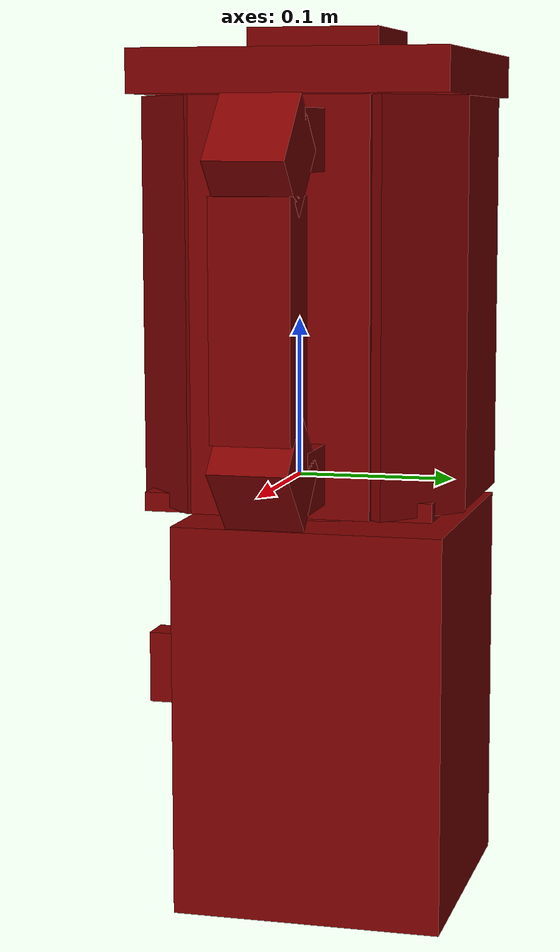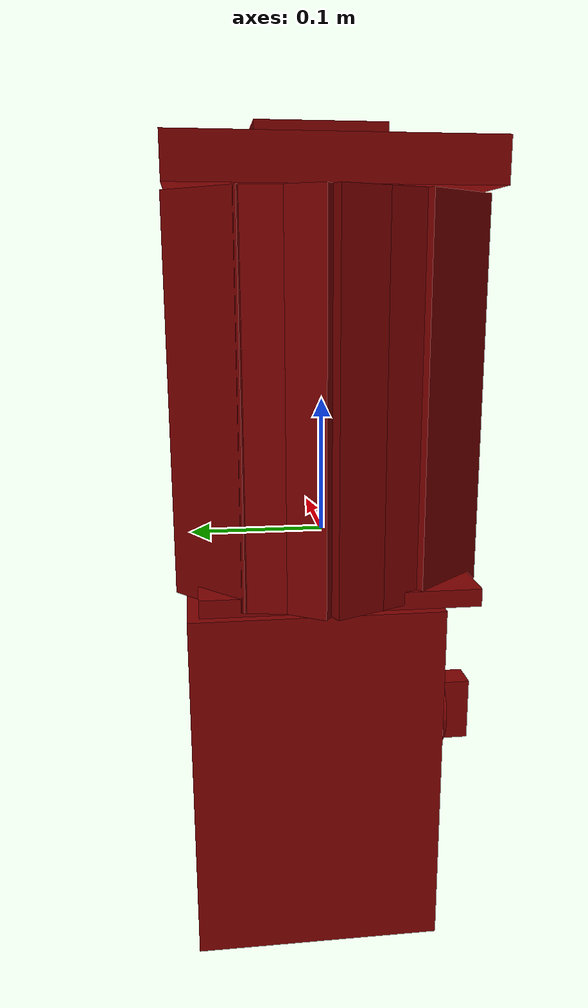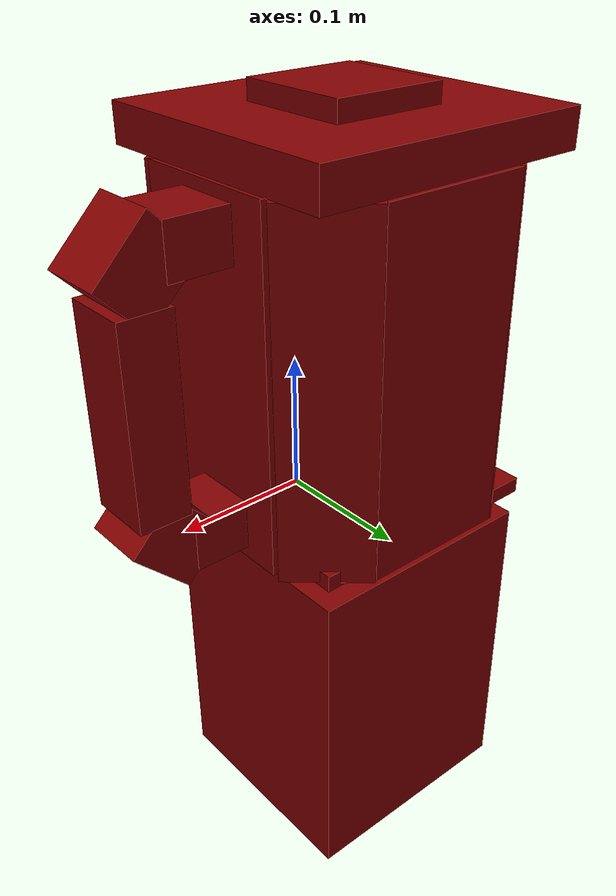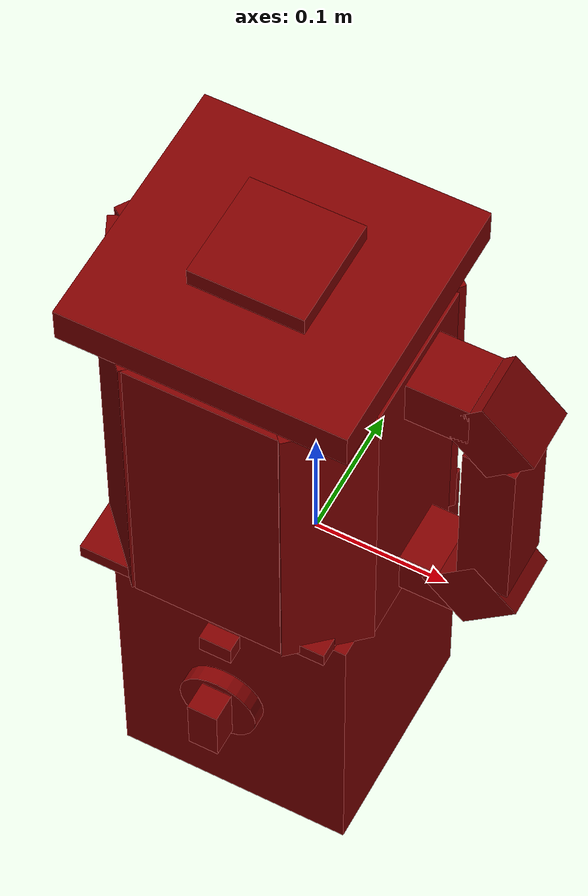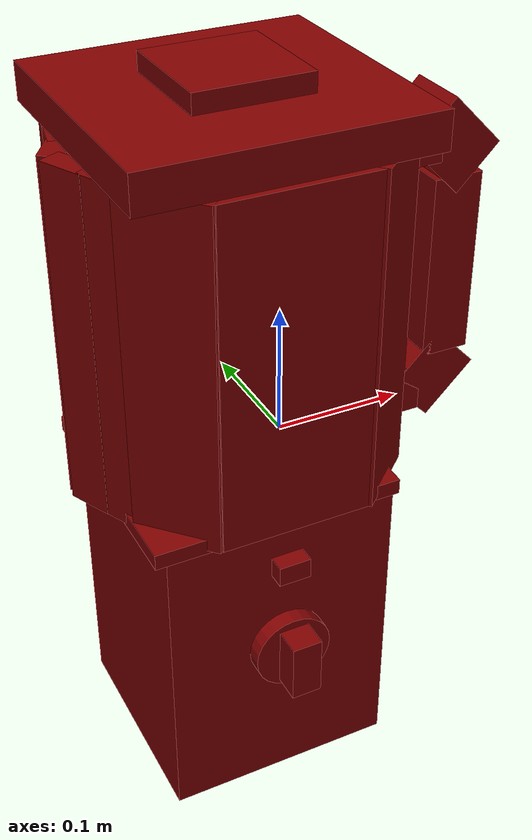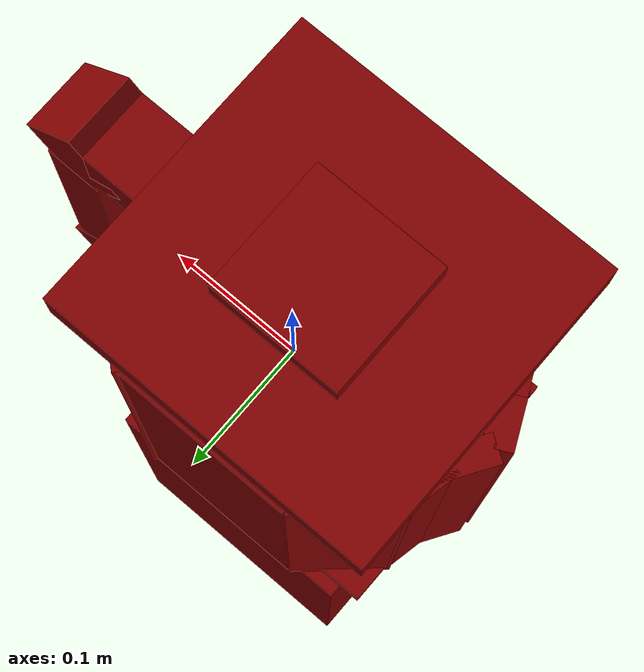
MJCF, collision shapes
<?xml version='1.0' encoding='UTF-8'?>
<mujoco model="model">
  <option timestep="0.0005" gravity="0.0 0.0 -9.81"/>
  <compiler angle="radian"/>
  <asset>
    <mesh file="visuals/Blade001.obj" name="Blade001_vis"/>
    <mesh file="visuals/Body001.obj" name="Body001_vis"/>
    <mesh file="visuals/Button001.obj" name="Button001_vis"/>
    <mesh file="visuals/Jug001.obj" name="Jug001_vis"/>
    <mesh file="visuals/Jug001_Clear.obj" name="Jug001_Clear_vis"/>
    <mesh file="visuals/Knob001.obj" name="Knob001_vis"/>
    <mesh file="visuals/Lid001.obj" name="Lid001_vis"/>
    <texture file="visuals/T_BC001.png" name="Body001_material" type="2d"/>
    <material name="Body001_material" rgba="1 1 1 1.0" texture="Body001_material" shininess="0.4472135901451111" specular="0.5"/>
    <texture file="visuals/T_BC001.png" name="Button001_material" type="2d"/>
    <material name="Button001_material" rgba="1 1 1 1.0" texture="Button001_material" shininess="0.4472135901451111" specular="1"/>
    <texture file="visuals/T_BC001.png" name="Jug001_Clear_material" type="2d"/>
    <material name="Jug001_Clear_material" rgba="1 1 1 0.699999988079071" texture="Jug001_Clear_material" shininess="0.4472135901451111" specular="0.3103448502657381"/>
    <texture file="visuals/T_BC001.png" name="Blade001_material" type="2d"/>
    <material name="Blade001_material" rgba="1 1 1 1.0" texture="Blade001_material" shininess="0.4472135901451111" specular="8"/>
    <texture file="visuals/T_BC001.png" name="Jug001_material" type="2d"/>
    <material name="Jug001_material" rgba="1 1 1 1.0" texture="Jug001_material" shininess="0.4472135901451111" specular="1"/>
    <texture file="visuals/T_BC001.png" name="Lid001_material" type="2d"/>
    <material name="Lid001_material" rgba="1 1 1 1.0" texture="Lid001_material" shininess="0.4472135901451111" specular="0.5"/>
    <texture file="visuals/T_BC001.png" name="Knob001_material" type="2d"/>
    <material name="Knob001_material" rgba="1 1 1 1.0" texture="Knob001_material" shininess="0.4472135901451111" specular="0.4"/>
  </asset>
  <default>
    <default class="visual">
      <geom conaffinity="0" contype="0" group="1" type="mesh"/>
    </default>
    <default class="collision">
      <geom group="0" rgba="0.5 0 0 0.5"/>
    </default>
    <default class="spawn">
      <geom group="0" rgba="1 1 1 0.5" contype="0" conaffinity="0"/>
      <site group="0" rgba="1 1 1 0.5"/>
    </default>
    <default class="region">
      <geom group="1" conaffinity="0" contype="0" rgba="0 1 0 0"/>
    </default>
  </default>
  <worldbody>
    <body>
      <body name="object">
        <geom mesh="Body001_vis" type="mesh" solimp="0.998 0.998 0.001" solref="0.001 1" friction="0.95 0.3 0.1" class="visual" material="Body001_material"/>
        <geom class="collision" type="box" pos="-0.031505 0.017902 -0.154483" size="0.09086225926876068 0.0869431346654892 0.126570925116539" quat="1.0 0.0 0.0 0.0" density="1000.0"/>
        <body name="Button001">
          <joint axis="0.0 1.0 0.0" pos="-0.031997 -0.076640 -0.082641" limited="true" name="Button001_joint" range="0.0 0.005" type="slide" damping="1" frictionloss="1" armature=".01" stiffness="0.05"/>
          <geom mesh="Button001_vis" type="mesh" solimp="0.998 0.998 0.001" solref="0.001 1" friction="0.95 0.3 0.1" class="visual" material="Button001_material"/>
          <geom class="collision" type="box" pos="-0.032084 -0.082435 -0.061640" size="0.012408987618982792 0.006734694819897413 0.008026663213968277" quat="1.0 0.0 0.0 0.0" density="1000.0"/>
        </body>
        <body name="Jug001_Clear">
          <geom class="region" name="reg_int" type="box" pos="-0.032156500000000005 0.010515000000000004 0.118184" size="0.0897125 0.09008 0.131803"/>
          <joint axis="0.0 0.0 1.0" pos="0.000484 0.010281 0.103877" limited="true" name="Jug001_Clear_joint" range="0.0 0.05" type="slide" damping="1" frictionloss="1" armature=".01" stiffness="0.05"/>
          <geom mesh="Jug001_Clear_vis" type="mesh" solimp="0.998 0.998 0.001" solref="0.001 1" friction="0.95 0.3 0.1" class="visual" material="Jug001_Clear_material"/>
          <geom class="collision" type="box" pos="-0.033963 0.102418 0.111395" size="0.05650936812162399 0.008711107075214386 0.12795747816562653" quat="1.0 0.0 0.0 0.0" density="1000.0"/>
          <geom class="collision" type="box" pos="-0.110348 0.083064 0.111395" size="0.032513655722141266 0.008711197413504124 0.12795889377593994" quat="0.933960497379303 0.0 0.0 0.35737624764442444" density="1000.0"/>
          <geom class="collision" type="box" pos="0.042906 0.084569 0.111395" size="0.032513655722141266 0.008711197413504124 0.12795889377593994" quat="0.933960497379303 0.0 -0.0 -0.35737624764442444" density="1000.0"/>
          <geom class="collision" type="box" pos="-0.033963 -0.085847 0.111395" size="0.05650944262742996 0.008711116388440132 0.12795762717723846" quat="1.0 0.0 0.0 0.0" density="1000.0"/>
          <geom class="collision" type="box" pos="0.042906 -0.067998 0.111395" size="0.032513655722141266 0.008711197413504124 0.12795889377593994" quat="0.933960497379303 0.0 0.0 0.35737624764442444" density="1000.0"/>
          <geom class="collision" type="box" pos="-0.108460 -0.065476 0.111395" size="0.03251366317272186 0.008711198344826698 0.12795889377593994" quat="0.9170170426368713 0.0 -0.0 -0.3988479971885681" density="1000.0"/>
          <geom class="collision" type="box" pos="0.062687 0.005383 0.111395" size="0.008711129426956177 0.05650951340794563 0.1279577612876892" quat="1.0 0.0 0.0 0.0" density="1000.0"/>
          <geom class="collision" type="box" pos="-0.131562 -0.028333 0.111395" size="0.017218004912137985 0.008711198344826698 0.12795889377593994" quat="0.5351915955543518 0.0 0.0 0.8447307348251343" density="1000.0"/>
          <geom class="collision" type="box" pos="-0.144804 -0.001152 0.111395" size="0.017218004912137985 0.008711198344826698 0.12795889377593994" quat="0.5351915955543518 0.0 0.0 0.8447307348251343" density="1000.0"/>
          <geom class="collision" type="box" pos="-0.142539 0.028121 0.111395" size="0.017218006774783134 0.008711198344826698 0.12795889377593994" quat="0.8767032623291016 0.0 0.0 0.481031596660614" density="1000.0"/>
          <geom class="collision" type="box" pos="-0.133478 0.051121 0.111395" size="0.017218006774783134 0.008711198344826698 0.12795889377593994" quat="0.7761645317077637 0.0 0.0 0.6305304169654846" density="1000.0"/>
          <geom class="collision" type="box" pos="-0.042706 0.004596 -0.013544" size="0.09490712732076645 0.0923057422041893 0.006025748793035746" quat="1.0 0.0 0.0 0.0" density="1000.0"/>
          <geom class="collision" type="box" pos="0.090010 0.010135 0.212437" size="0.02718629129230976 0.02422558329999447 0.018655451014637947" quat="1.0 0.0 0.0 0.0" density="1000.0"/>
          <geom class="collision" type="box" pos="0.128586 0.010135 0.203592" size="0.02718629315495491 0.02422558329999447 0.023177461698651314" quat="0.9241241216659546 -2.755961454328163e-15 0.38209235668182373 5.1337494255676575e-08" density="1000.0"/>
          <geom class="collision" type="box" pos="0.132916 0.010135 0.109686" size="0.01915726438164711 0.02422558329999447 0.07122552394866943" quat="1.0 0.0 0.0 0.0" density="1000.0"/>
          <geom class="collision" type="box" pos="0.085243 0.010135 0.011156" size="0.02718629129230976 0.02422558329999447 0.018655451014637947" quat="1.0 0.0 0.0 0.0" density="1000.0"/>
          <geom class="collision" type="box" pos="0.123819 0.010135 0.020001" size="0.02718629315495491 0.02422558329999447 0.023177461698651314" quat="0.9241241216659546 4.973259717388242e-16 -0.3820923864841461 5.133750136110393e-08" density="1000.0"/>
          <body name="Blade001">
            <joint axis="0.0 0.0 1.0" pos="-0.031940 0.010318 0.017863" limited="false" name="Blade001_joint" range="0 360" type="hinge" damping="1" frictionloss="1" armature=".01" stiffness="0.05"/>
            <geom mesh="Blade001_vis" type="mesh" solimp="0.998 0.998 0.001" solref="0.001 1" friction="0.95 0.3 0.1" class="visual" material="Blade001_material"/>
            <geom class="collision" type="box" pos="-0.031581 0.010369 0.000906" size="0.015457836911082268 0.00963042676448822 0.0011948224855586886" quat="1.0 0.0 0.0 0.0" density="1000.0"/>
            <geom class="collision" type="box" pos="-0.031873 0.033737 0.018324" size="0.019890112802386284 0.00963042676448822 0.0011948226019740105" quat="0.5970932841300964 0.378787100315094 -0.3787870407104492 0.5970932245254517" density="1000.0"/>
            <geom class="collision" type="box" pos="-0.031873 0.010661 0.000906" size="0.009630427695810795 0.015457837842404842 0.0011948224855586886" quat="1.0 0.0 0.0 0.0" density="1000.0"/>
            <geom class="collision" type="box" pos="-0.031873 -0.013385 0.018324" size="0.019890112802386284 0.00963042676448822 0.0011948226019740105" quat="0.5970932245254517 -0.37878715991973877 0.3787870705127716 0.5970932245254517" density="1000.0"/>
            <geom class="collision" type="box" pos="-0.055850 0.010282 0.018324" size="0.019890110939741135 0.00963042676448822 0.0011948224855586886" quat="0.8444173336029053 -3.837461903799522e-08 0.5356858968734741 -5.73129144143536e-09" density="1000.0"/>
            <geom class="collision" type="box" pos="-0.008283 0.010282 0.018324" size="0.019890112802386284 0.00963042676448822 0.0011948226019740105" quat="1.0835157837618681e-07 0.5356858968734741 1.1074719452608406e-07 -0.8444173336029053" density="1000.0"/>
          </body>
          <body name="Jug001">
            <geom mesh="Jug001_vis" type="mesh" solimp="0.998 0.998 0.001" solref="0.001 1" friction="0.95 0.3 0.1" class="visual" material="Jug001_material"/>
            <geom class="collision" type="cylinder" pos="-0.031010 0.010578 -0.014757" size="0.053082868456840515 0.012121236883103848" quat="1.0 0.0 0.0 0.0" density="1000.0"/>
          </body>
          <body name="Lid001">
            <joint axis="0.0 0.0 1.0" pos="-0.041944 0.010256 0.253051" limited="true" name="Lid001_joint" range="0.0 0.05" type="slide" damping="1" frictionloss="1" armature=".01" stiffness="0.05"/>
            <geom mesh="Lid001_vis" type="mesh" solimp="0.998 0.998 0.001" solref="0.001 1" friction="0.95 0.3 0.1" class="visual" material="Lid001_material"/>
            <geom class="collision" type="box" pos="-0.035609 0.009185 0.253802" size="0.10527113080024719 0.10018409788608551 0.01374603621661663" quat="1.0 0.0 0.0 0.0" density="1000.0"/>
            <geom class="collision" type="box" pos="-0.034111 0.010504 0.270800" size="0.042463742196559906 0.04234278202056885 0.01106703095138073" quat="1.0 0.0 0.0 0.0" density="1000.0"/>
          </body>
        </body>
        <body name="Knob001">
          <joint axis="0.0 1.0 0.0" pos="-0.032416 -0.092216 -0.139831" limited="true" name="Knob001_joint" range="-0.9948376736367678 3.839724354387525" type="hinge" damping="0.05" armature="0.001"/>
          <geom mesh="Knob001_vis" type="mesh" solimp="0.998 0.998 0.001" solref="0.001 1" friction="0.95 0.3 0.1" class="visual" material="Knob001_material"/>
          <geom class="collision" type="cylinder" pos="-0.032007 -0.082386 -0.139611" size="0.030412523075938225 0.006172697059810162" quat="0.7071067094802856 0.7071068286895752 0.0 0.0" density="1000.0"/>
          <geom class="collision" type="box" pos="-0.032159 -0.095557 -0.139845" size="0.011668688617646694 0.0147519800812006 0.023852845653891563" quat="1.0 0.0 0.0 0.0" density="1000.0"/>
        </body>
        <geom class="region" name="reg_main" type="box" pos="-0.041557500000000004 0.010225999999999999 0.0" size="0.1092825 0.099776 0.279321"/>
      </body>
    </body>
  </worldbody>
  <actuator>
    <motor name="Button001_joint_actuator" joint="Button001_joint" gear="0.2"/>
    <motor name="Jug001_Clear_joint_actuator" joint="Jug001_Clear_joint" gear="300"/>
    <motor name="Knob001_joint_actuator" joint="Knob001_joint" gear="10"/>
    <motor name="Blade001_joint_actuator" joint="Blade001_joint" gear="10"/>
    <motor name="Lid001_joint_actuator" joint="Lid001_joint" gear="50"/>
  </actuator>
</mujoco>
